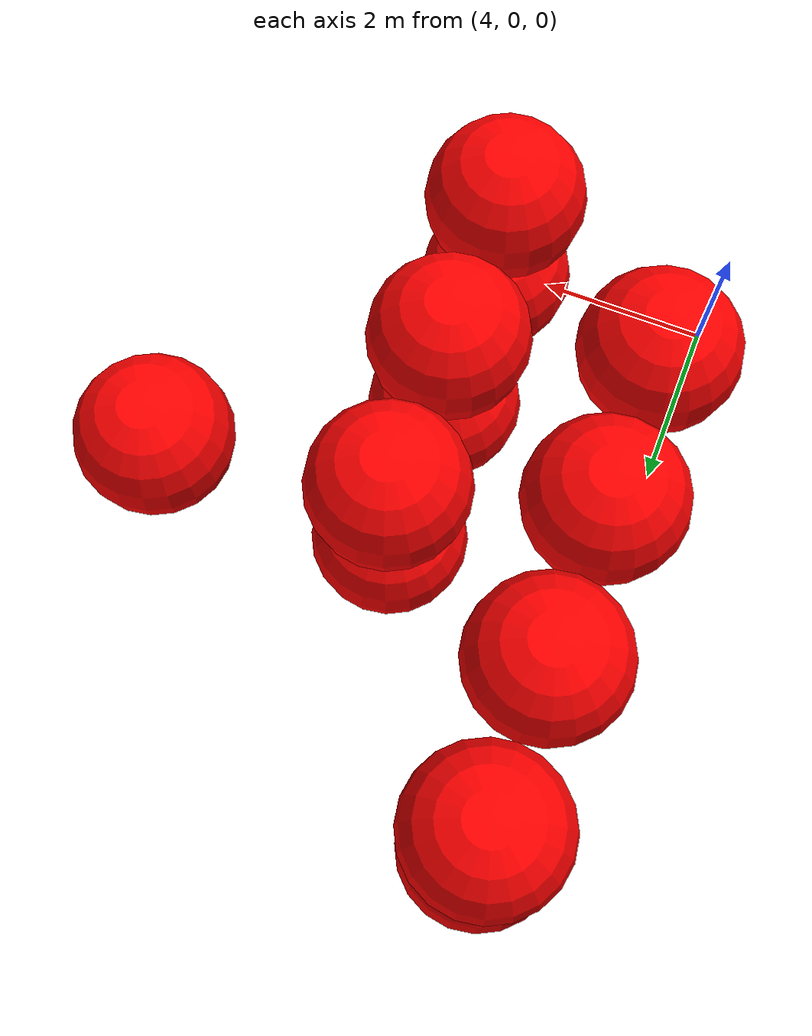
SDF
<sdf version="1.8">
 <world name="3d_world">
  <model name="obstacle_4" canonical_link="obstacle">
   <static>true</static>
   <pose relative_to="world">4.40 6.83 -1.00 0 0 0</pose>
   <link name="obstacle">
    <pose relative_to="__model__">0.0 0 0.0 0 0 0</pose>
    <visual name="visual">
     <geometry><sphere><radius>1.00</radius></sphere></geometry>
     <material>
      <ambient>1.0 0.0 0.0 1</ambient>
      <diffuse>1.0 0.0 0.0 1</diffuse>
      <specular>1.0 0.0 0.0 1</specular>
     </material>
    </visual>
    <collision name="collision"><geometry><sphere><radius>1.00</radius></sphere></geometry></collision>
    <enable_gravity>false</enable_gravity>
   </link>
   <plugin filename="ignition-gazebo-velocity-control-system" name="ignition::gazebo::systems::VelocityControl">
    <initial_linear>0.00 0.00 0.00</initial_linear>
    <initial_angular>0 0 0</initial_angular>
   </plugin>
   <plugin filename="ignition-gazebo-odometry-publisher-system" name="ignition::gazebo::systems::OdometryPublisher">
    <dimensions>3</dimensions>
   </plugin>
  </model>
  <model name="obstacle_5" canonical_link="obstacle">
   <static>true</static>
   <pose relative_to="world">4.40 0.83 1.00 0 0 0</pose>
   <link name="obstacle">
    <pose relative_to="__model__">0.0 0 0.0 0 0 0</pose>
    <visual name="visual">
     <geometry><sphere><radius>1.00</radius></sphere></geometry>
     <material>
      <ambient>1.0 0.0 0.0 1</ambient>
      <diffuse>1.0 0.0 0.0 1</diffuse>
      <specular>1.0 0.0 0.0 1</specular>
     </material>
    </visual>
    <collision name="collision"><geometry><sphere><radius>1.00</radius></sphere></geometry></collision>
    <enable_gravity>false</enable_gravity>
   </link>
   <plugin filename="ignition-gazebo-velocity-control-system" name="ignition::gazebo::systems::VelocityControl">
    <initial_linear>0.00 0.00 0.00</initial_linear>
    <initial_angular>0 0 0</initial_angular>
   </plugin>
   <plugin filename="ignition-gazebo-odometry-publisher-system" name="ignition::gazebo::systems::OdometryPublisher">
    <dimensions>3</dimensions>
   </plugin>
  </model>
  <model name="obstacle_6" canonical_link="obstacle">
   <static>true</static>
   <pose relative_to="world">4.40 2.83 1.00 0 0 0</pose>
   <link name="obstacle">
    <pose relative_to="__model__">0.0 0 0.0 0 0 0</pose>
    <visual name="visual">
     <geometry><sphere><radius>1.00</radius></sphere></geometry>
     <material>
      <ambient>1.0 0.0 0.0 1</ambient>
      <diffuse>1.0 0.0 0.0 1</diffuse>
      <specular>1.0 0.0 0.0 1</specular>
     </material>
    </visual>
    <collision name="collision"><geometry><sphere><radius>1.00</radius></sphere></geometry></collision>
    <enable_gravity>false</enable_gravity>
   </link>
   <plugin filename="ignition-gazebo-velocity-control-system" name="ignition::gazebo::systems::VelocityControl">
    <initial_linear>0.00 0.00 0.00</initial_linear>
    <initial_angular>0 0 0</initial_angular>
   </plugin>
   <plugin filename="ignition-gazebo-odometry-publisher-system" name="ignition::gazebo::systems::OdometryPublisher">
    <dimensions>3</dimensions>
   </plugin>
  </model>
  <model name="obstacle_7" canonical_link="obstacle">
   <static>true</static>
   <pose relative_to="world">4.40 4.83 1.00 0 0 0</pose>
   <link name="obstacle">
    <pose relative_to="__model__">0.0 0 0.0 0 0 0</pose>
    <visual name="visual">
     <geometry><sphere><radius>1.00</radius></sphere></geometry>
     <material>
      <ambient>1.0 0.0 0.0 1</ambient>
      <diffuse>1.0 0.0 0.0 1</diffuse>
      <specular>1.0 0.0 0.0 1</specular>
     </material>
    </visual>
    <collision name="collision"><geometry><sphere><radius>1.00</radius></sphere></geometry></collision>
    <enable_gravity>false</enable_gravity>
   </link>
   <plugin filename="ignition-gazebo-velocity-control-system" name="ignition::gazebo::systems::VelocityControl">
    <initial_linear>0.00 0.00 0.00</initial_linear>
    <initial_angular>0 0 0</initial_angular>
   </plugin>
   <plugin filename="ignition-gazebo-odometry-publisher-system" name="ignition::gazebo::systems::OdometryPublisher">
    <dimensions>3</dimensions>
   </plugin>
  </model>
  <model name="obstacle_8" canonical_link="obstacle">
   <static>true</static>
   <pose relative_to="world">4.40 6.83 1.00 0 0 0</pose>
   <link name="obstacle">
    <pose relative_to="__model__">0.0 0 0.0 0 0 0</pose>
    <visual name="visual">
     <geometry><sphere><radius>1.00</radius></sphere></geometry>
     <material>
      <ambient>1.0 0.0 0.0 1</ambient>
      <diffuse>1.0 0.0 0.0 1</diffuse>
      <specular>1.0 0.0 0.0 1</specular>
     </material>
    </visual>
    <collision name="collision"><geometry><sphere><radius>1.00</radius></sphere></geometry></collision>
    <enable_gravity>false</enable_gravity>
   </link>
   <plugin filename="ignition-gazebo-velocity-control-system" name="ignition::gazebo::systems::VelocityControl">
    <initial_linear>0.00 0.00 0.00</initial_linear>
    <initial_angular>0 0 0</initial_angular>
   </plugin>
   <plugin filename="ignition-gazebo-odometry-publisher-system" name="ignition::gazebo::systems::OdometryPublisher">
    <dimensions>3</dimensions>
   </plugin>
  </model>
  <model name="obstacle_13" canonical_link="obstacle">
   <static>true</static>
   <pose relative_to="world">6.79 -0.44 -1.00 0 0 0</pose>
   <link name="obstacle">
    <pose relative_to="__model__">0.0 0 0.0 0 0 0</pose>
    <visual name="visual">
     <geometry><sphere><radius>1.00</radius></sphere></geometry>
     <material>
      <ambient>1.0 0.0 0.0 1</ambient>
      <diffuse>1.0 0.0 0.0 1</diffuse>
      <specular>1.0 0.0 0.0 1</specular>
     </material>
    </visual>
    <collision name="collision"><geometry><sphere><radius>1.00</radius></sphere></geometry></collision>
    <enable_gravity>false</enable_gravity>
   </link>
   <plugin filename="ignition-gazebo-velocity-control-system" name="ignition::gazebo::systems::VelocityControl">
    <initial_linear>0.00 0.00 0.00</initial_linear>
    <initial_angular>0 0 0</initial_angular>
   </plugin>
   <plugin filename="ignition-gazebo-odometry-publisher-system" name="ignition::gazebo::systems::OdometryPublisher">
    <dimensions>3</dimensions>
   </plugin>
  </model>
  <model name="obstacle_14" canonical_link="obstacle">
   <static>true</static>
   <pose relative_to="world">6.79 1.56 -1.00 0 0 0</pose>
   <link name="obstacle">
    <pose relative_to="__model__">0.0 0 0.0 0 0 0</pose>
    <visual name="visual">
     <geometry><sphere><radius>1.00</radius></sphere></geometry>
     <material>
      <ambient>1.0 0.0 0.0 1</ambient>
      <diffuse>1.0 0.0 0.0 1</diffuse>
      <specular>1.0 0.0 0.0 1</specular>
     </material>
    </visual>
    <collision name="collision"><geometry><sphere><radius>1.00</radius></sphere></geometry></collision>
    <enable_gravity>false</enable_gravity>
   </link>
   <plugin filename="ignition-gazebo-velocity-control-system" name="ignition::gazebo::systems::VelocityControl">
    <initial_linear>0.00 0.00 0.00</initial_linear>
    <initial_angular>0 0 0</initial_angular>
   </plugin>
   <plugin filename="ignition-gazebo-odometry-publisher-system" name="ignition::gazebo::systems::OdometryPublisher">
    <dimensions>3</dimensions>
   </plugin>
  </model>
  <model name="obstacle_15" canonical_link="obstacle">
   <static>true</static>
   <pose relative_to="world">6.79 3.56 -1.00 0 0 0</pose>
   <link name="obstacle">
    <pose relative_to="__model__">0.0 0 0.0 0 0 0</pose>
    <visual name="visual">
     <geometry><sphere><radius>1.00</radius></sphere></geometry>
     <material>
      <ambient>1.0 0.0 0.0 1</ambient>
      <diffuse>1.0 0.0 0.0 1</diffuse>
      <specular>1.0 0.0 0.0 1</specular>
     </material>
    </visual>
    <collision name="collision"><geometry><sphere><radius>1.00</radius></sphere></geometry></collision>
    <enable_gravity>false</enable_gravity>
   </link>
   <plugin filename="ignition-gazebo-velocity-control-system" name="ignition::gazebo::systems::VelocityControl">
    <initial_linear>0.00 0.00 0.00</initial_linear>
    <initial_angular>0 0 0</initial_angular>
   </plugin>
   <plugin filename="ignition-gazebo-odometry-publisher-system" name="ignition::gazebo::systems::OdometryPublisher">
    <dimensions>3</dimensions>
   </plugin>
  </model>
  <model name="obstacle_16" canonical_link="obstacle">
   <static>true</static>
   <pose relative_to="world">6.79 -0.44 1.00 0 0 0</pose>
   <link name="obstacle">
    <pose relative_to="__model__">0.0 0 0.0 0 0 0</pose>
    <visual name="visual">
     <geometry><sphere><radius>1.00</radius></sphere></geometry>
     <material>
      <ambient>1.0 0.0 0.0 1</ambient>
      <diffuse>1.0 0.0 0.0 1</diffuse>
      <specular>1.0 0.0 0.0 1</specular>
     </material>
    </visual>
    <collision name="collision"><geometry><sphere><radius>1.00</radius></sphere></geometry></collision>
    <enable_gravity>false</enable_gravity>
   </link>
   <plugin filename="ignition-gazebo-velocity-control-system" name="ignition::gazebo::systems::VelocityControl">
    <initial_linear>0.00 0.00 0.00</initial_linear>
    <initial_angular>0 0 0</initial_angular>
   </plugin>
   <plugin filename="ignition-gazebo-odometry-publisher-system" name="ignition::gazebo::systems::OdometryPublisher">
    <dimensions>3</dimensions>
   </plugin>
  </model>
  <model name="obstacle_17" canonical_link="obstacle">
   <static>true</static>
   <pose relative_to="world">6.79 1.56 1.00 0 0 0</pose>
   <link name="obstacle">
    <pose relative_to="__model__">0.0 0 0.0 0 0 0</pose>
    <visual name="visual">
     <geometry><sphere><radius>1.00</radius></sphere></geometry>
     <material>
      <ambient>1.0 0.0 0.0 1</ambient>
      <diffuse>1.0 0.0 0.0 1</diffuse>
      <specular>1.0 0.0 0.0 1</specular>
     </material>
    </visual>
    <collision name="collision"><geometry><sphere><radius>1.00</radius></sphere></geometry></collision>
    <enable_gravity>false</enable_gravity>
   </link>
   <plugin filename="ignition-gazebo-velocity-control-system" name="ignition::gazebo::systems::VelocityControl">
    <initial_linear>0.00 0.00 0.00</initial_linear>
    <initial_angular>0 0 0</initial_angular>
   </plugin>
   <plugin filename="ignition-gazebo-odometry-publisher-system" name="ignition::gazebo::systems::OdometryPublisher">
    <dimensions>3</dimensions>
   </plugin>
  </model>
  <model name="obstacle_18" canonical_link="obstacle">
   <static>true</static>
   <pose relative_to="world">6.79 3.56 1.00 0 0 0</pose>
   <link name="obstacle">
    <pose relative_to="__model__">0.0 0 0.0 0 0 0</pose>
    <visual name="visual">
     <geometry><sphere><radius>1.00</radius></sphere></geometry>
     <material>
      <ambient>1.0 0.0 0.0 1</ambient>
      <diffuse>1.0 0.0 0.0 1</diffuse>
      <specular>1.0 0.0 0.0 1</specular>
     </material>
    </visual>
    <collision name="collision"><geometry><sphere><radius>1.00</radius></sphere></geometry></collision>
    <enable_gravity>false</enable_gravity>
   </link>
   <plugin filename="ignition-gazebo-velocity-control-system" name="ignition::gazebo::systems::VelocityControl">
    <initial_linear>0.00 0.00 0.00</initial_linear>
    <initial_angular>0 0 0</initial_angular>
   </plugin>
   <plugin filename="ignition-gazebo-odometry-publisher-system" name="ignition::gazebo::systems::OdometryPublisher">
    <dimensions>3</dimensions>
   </plugin>
  </model>
  <model name="obstacle_20" canonical_link="obstacle">
   <static>false</static>
   <pose relative_to="world">9.84 3.67 0.05 0 0 0</pose>
   <link name="obstacle">
    <pose relative_to="__model__">0.0 0 0.0 0 0 0</pose>
    <visual name="visual">
     <geometry><sphere><radius>1.00</radius></sphere></geometry>
     <material>
      <ambient>1.0 0.0 0.0 1</ambient>
      <diffuse>1.0 0.0 0.0 1</diffuse>
      <specular>1.0 0.0 0.0 1</specular>
     </material>
    </visual>
    <collision name="collision"><geometry><sphere><radius>1.00</radius></sphere></geometry></collision>
    <enable_gravity>false</enable_gravity>
   </link>
   <plugin filename="ignition-gazebo-velocity-control-system" name="ignition::gazebo::systems::VelocityControl">
    <initial_linear>0.00 -1.77 0.04</initial_linear>
    <initial_angular>0 0 0</initial_angular>
   </plugin>
   <plugin filename="ignition-gazebo-odometry-publisher-system" name="ignition::gazebo::systems::OdometryPublisher">
    <dimensions>3</dimensions>
   </plugin>
  </model>
 </world>
</sdf>
